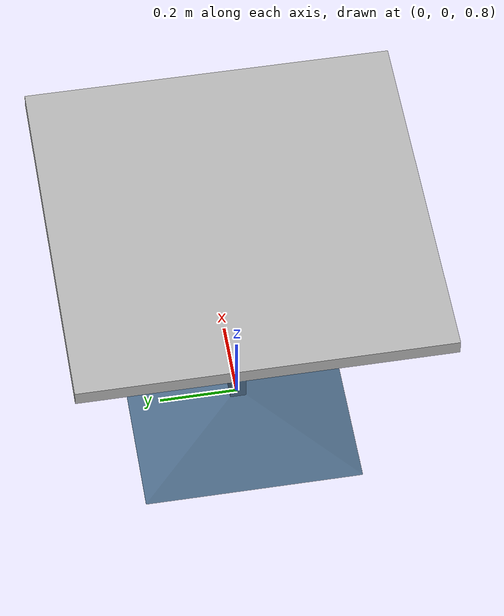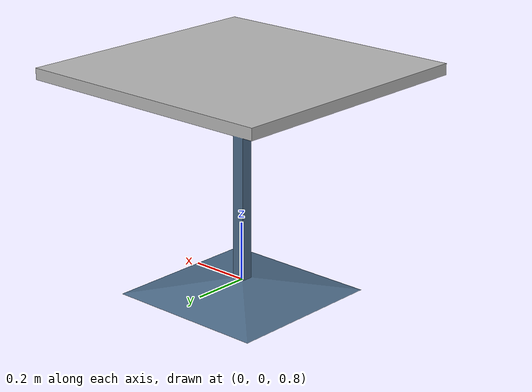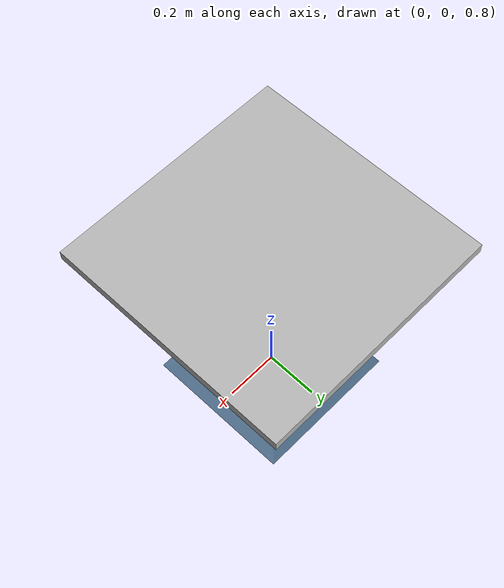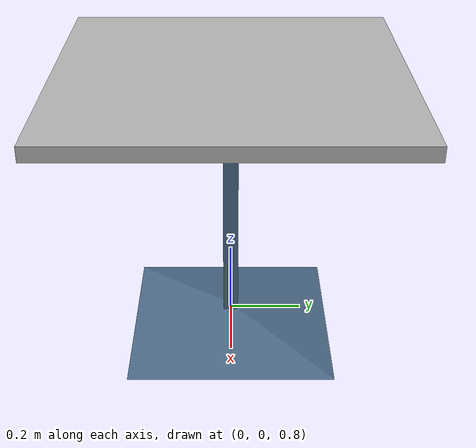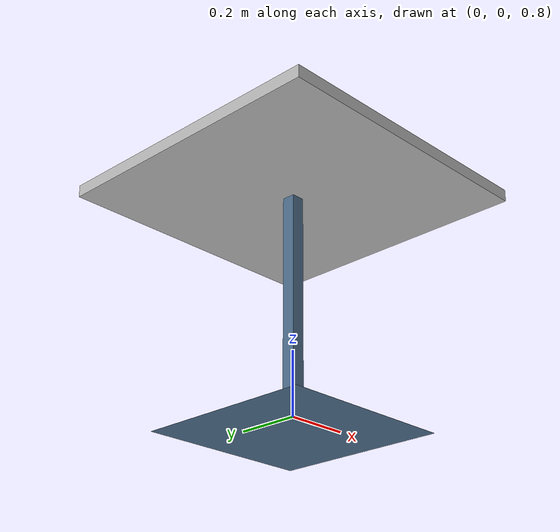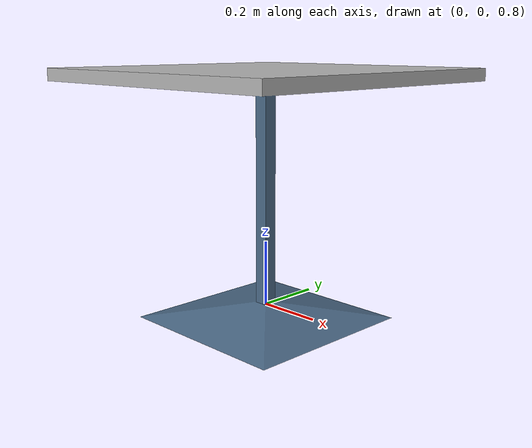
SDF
<?xml version="1.0" ?>
<sdf version="1.5">
  <model name="cafe_table">
    <static>false</static>
    <link name="chair_link">
      <collision name="surface">
        <pose>0 0 0.755 0 0 0</pose>
        <geometry>
          <box>
            <size>0.913 0.913 0.04</size>
          </box>
        </geometry>
      </collision>

      <collision name="column">
        <pose>0 0 0.37 0 0 0</pose>
        <geometry>
          <box>
            <size>0.042 0.042 0.74</size>
          </box>
        </geometry>
      </collision>

      <collision name="base">
        <pose>0 0 0.02 0 0 0</pose>
        <geometry>
          <box>
            <size>0.56 0.56 0.04</size>
          </box>
        </geometry>
      </collision>

      <visual name="visual">
        <pose>0 0 0.755 0 0 0</pose>
        <geometry>
          <mesh>
            <uri>file:///workspaces/robman-final-proj/assets/Cafetable/meshes/cafe_table.dae</uri>
          </mesh>
        </geometry>
      </visual>
    </link>
  </model>
</sdf>
